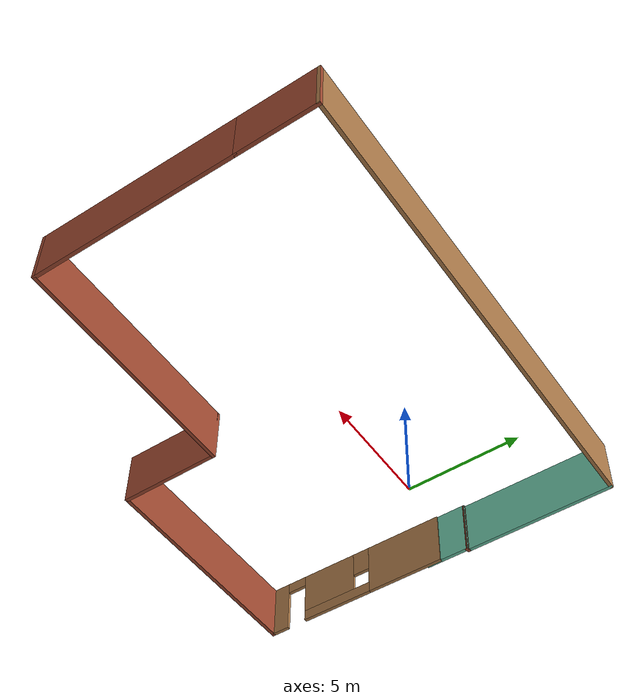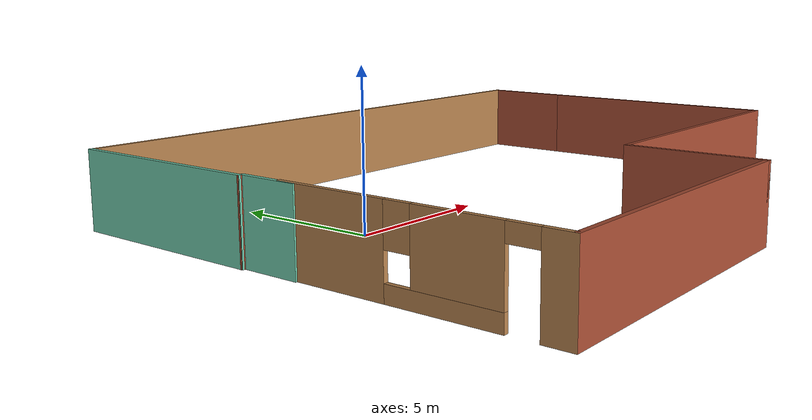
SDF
<?xml version='1.0'?>
<sdf version='1.6'>
  <model name='building2'>
    <pose frame=''>5.87157 -1.505 0 0 -0 0</pose>
    <link name='Wall_0'>
      <pose frame=''>-10.1416 -3.975 0 0 -0 -1.5708</pose>
      <visual name='Wall_0_Visual_0'>
        <pose frame=''>-2.5932 0 1.25 0 -0 0</pose>
        <geometry>
          <box>
            <size>3.5636 0.15 2.5</size>
          </box>
        </geometry>
        <material>
          <script>
            <uri>file://media/materials/scripts/gazebo.material</uri>
            <name>Gazebo/Wood</name>
          </script>
          <ambient>1 1 1 1</ambient>
        </material>
        <meta>
          <layer>0</layer>
        </meta>
      </visual>
      <collision name='Wall_0_Collision_0'>
        <geometry>
          <box>
            <size>3.5636 0.15 2.5</size>
          </box>
        </geometry>
        <pose frame=''>-2.5932 0 1.25 0 -0 0</pose>
      </collision>
      <visual name='Wall_0_Visual_1'>
        <pose frame=''>3.92616 0 1.25 0 -0 0</pose>
        <geometry>
          <box>
            <size>0.897676 0.15 2.5</size>
          </box>
        </geometry>
        <material>
          <script>
            <uri>file://media/materials/scripts/gazebo.material</uri>
            <name>Gazebo/Wood</name>
          </script>
          <ambient>1 1 1 1</ambient>
        </material>
        <meta>
          <layer>0</layer>
        </meta>
      </visual>
      <collision name='Wall_0_Collision_1'>
        <geometry>
          <box>
            <size>0.897676 0.15 2.5</size>
          </box>
        </geometry>
        <pose frame=''>3.92616 0 1.25 0 -0 0</pose>
      </collision>
      <visual name='Wall_0_Visual_2'>
        <pose frame=''>0.882962 0 0.25 0 -0 0</pose>
        <geometry>
          <box>
            <size>3.38872 0.15 0.5</size>
          </box>
        </geometry>
        <material>
          <script>
            <uri>file://media/materials/scripts/gazebo.material</uri>
            <name>Gazebo/Wood</name>
          </script>
          <ambient>1 1 1 1</ambient>
        </material>
        <meta>
          <layer>0</layer>
        </meta>
      </visual>
      <collision name='Wall_0_Collision_2'>
        <geometry>
          <box>
            <size>3.38872 0.15 0.5</size>
          </box>
        </geometry>
        <pose frame=''>0.882962 0 0.25 0 -0 0</pose>
      </collision>
      <visual name='Wall_0_Visual_3'>
        <pose frame=''>1.28296 0 1.5 0 -0 0</pose>
        <geometry>
          <box>
            <size>2.58872 0.15 2</size>
          </box>
        </geometry>
        <material>
          <script>
            <uri>file://media/materials/scripts/gazebo.material</uri>
            <name>Gazebo/Wood</name>
          </script>
          <ambient>1 1 1 1</ambient>
        </material>
        <meta>
          <layer>0</layer>
        </meta>
      </visual>
      <collision name='Wall_0_Collision_3'>
        <geometry>
          <box>
            <size>2.58872 0.15 2</size>
          </box>
        </geometry>
        <pose frame=''>1.28296 0 1.5 0 -0 0</pose>
      </collision>
      <visual name='Wall_0_Visual_4'>
        <pose frame=''>-0.4114 0 1.9 0 -0 0</pose>
        <geometry>
          <box>
            <size>0.8 0.15 1.2</size>
          </box>
        </geometry>
        <material>
          <script>
            <uri>file://media/materials/scripts/gazebo.material</uri>
            <name>Gazebo/Wood</name>
          </script>
          <ambient>1 1 1 1</ambient>
        </material>
        <meta>
          <layer>0</layer>
        </meta>
      </visual>
      <collision name='Wall_0_Collision_4'>
        <geometry>
          <box>
            <size>0.8 0.15 1.2</size>
          </box>
        </geometry>
        <pose frame=''>-0.4114 0 1.9 0 -0 0</pose>
      </collision>
      <visual name='Wall_0_Visual_5'>
        <pose frame=''>3.02732 0 2.25 0 -0 0</pose>
        <geometry>
          <box>
            <size>0.9 0.15 0.5</size>
          </box>
        </geometry>
        <material>
          <script>
            <uri>file://media/materials/scripts/gazebo.material</uri>
            <name>Gazebo/Wood</name>
          </script>
          <ambient>1 1 1 1</ambient>
        </material>
        <meta>
          <layer>0</layer>
        </meta>
      </visual>
      <collision name='Wall_0_Collision_5'>
        <geometry>
          <box>
            <size>0.9 0.15 0.5</size>
          </box>
        </geometry>
        <pose frame=''>3.02732 0 2.25 0 -0 0</pose>
      </collision>
    </link>
    <link name='Wall_10'>
      <collision name='Wall_10_Collision'>
        <geometry>
          <box>
            <size>2 0.15 2.5</size>
          </box>
        </geometry>
        <pose frame=''>0 0 1.25 0 -0 0</pose>
      </collision>
      <visual name='Wall_10_Visual'>
        <pose frame=''>0 0 1.25 0 -0 0</pose>
        <geometry>
          <box>
            <size>2 0.15 2.5</size>
          </box>
        </geometry>
        <material>
          <script>
            <uri>file://media/materials/scripts/gazebo.material</uri>
            <name>Gazebo/Grey</name>
          </script>
          <ambient>0.435294 0.796078 0.67451 1</ambient>
        </material>
        <meta>
          <layer>0</layer>
        </meta>
      </visual>
      <pose frame=''>-10.195 0.724118 0 0 -0 -1.5708</pose>
    </link>
    <link name='Wall_2'>
      <collision name='Wall_2_Collision'>
        <geometry>
          <box>
            <size>10.25 0.15 2.5</size>
          </box>
        </geometry>
        <pose frame=''>0 0 1.25 0 -0 0</pose>
      </collision>
      <visual name='Wall_2_Visual'>
        <pose frame=''>0 0 1.25 0 -0 0</pose>
        <geometry>
          <box>
            <size>10.25 0.15 2.5</size>
          </box>
        </geometry>
        <material>
          <script>
            <uri>file://media/materials/scripts/gazebo.material</uri>
            <name>Gazebo/Bricks</name>
          </script>
          <ambient>1 1 1 1</ambient>
        </material>
        <meta>
          <layer>0</layer>
        </meta>
      </visual>
      <pose frame=''>-5.09157 -8.275 0 0 -0 0</pose>
    </link>
    <link name='Wall_3'>
      <collision name='Wall_3_Collision'>
        <geometry>
          <box>
            <size>4.5 0.15 2.5</size>
          </box>
        </geometry>
        <pose frame=''>0 0 1.25 0 -0 0</pose>
      </collision>
      <visual name='Wall_3_Visual'>
        <pose frame=''>0 0 1.25 0 -0 0</pose>
        <geometry>
          <box>
            <size>4.5 0.15 2.5</size>
          </box>
        </geometry>
        <material>
          <script>
            <uri>file://media/materials/scripts/gazebo.material</uri>
            <name>Gazebo/Bricks</name>
          </script>
          <ambient>1 1 1 1</ambient>
        </material>
        <meta>
          <layer>0</layer>
        </meta>
      </visual>
      <pose frame=''>-0.041573 -6.1 0 0 -0 1.5708</pose>
    </link>
    <link name='Wall_4'>
      <collision name='Wall_4_Collision'>
        <geometry>
          <box>
            <size>10.5 0.15 2.5</size>
          </box>
        </geometry>
        <pose frame=''>0 0 1.25 0 -0 0</pose>
      </collision>
      <visual name='Wall_4_Visual'>
        <pose frame=''>0 0 1.25 0 -0 0</pose>
        <geometry>
          <box>
            <size>10.5 0.15 2.5</size>
          </box>
        </geometry>
        <material>
          <script>
            <uri>file://media/materials/scripts/gazebo.material</uri>
            <name>Gazebo/Bricks</name>
          </script>
          <ambient>1 1 1 1</ambient>
        </material>
        <meta>
          <layer>0</layer>
        </meta>
      </visual>
      <pose frame=''>5.13343 -3.925 0 0 -0 0</pose>
    </link>
    <link name='Wall_5'>
      <collision name='Wall_5_Collision'>
        <geometry>
          <box>
            <size>9 0.15 2.5</size>
          </box>
        </geometry>
        <pose frame=''>0 0 1.25 0 -0 0</pose>
      </collision>
      <visual name='Wall_5_Visual'>
        <pose frame=''>0 0 1.25 0 -0 0</pose>
        <geometry>
          <box>
            <size>9 0.15 2.5</size>
          </box>
        </geometry>
        <material>
          <script>
            <uri>file://media/materials/scripts/gazebo.material</uri>
            <name>Gazebo/Bricks</name>
          </script>
          <ambient>1 1 1 1</ambient>
        </material>
        <meta>
          <layer>0</layer>
        </meta>
      </visual>
      <pose frame=''>10.3084 0.5 0 0 -0 1.5708</pose>
    </link>
    <link name='Wall_6'>
      <collision name='Wall_6_Collision'>
        <geometry>
          <box>
            <size>3.5 0.15 2.5</size>
          </box>
        </geometry>
        <pose frame=''>0 0 1.25 0 -0 0</pose>
      </collision>
      <visual name='Wall_6_Visual'>
        <pose frame=''>0 0 1.25 0 -0 0</pose>
        <geometry>
          <box>
            <size>3.5 0.15 2.5</size>
          </box>
        </geometry>
        <material>
          <script>
            <uri>file://media/materials/scripts/gazebo.material</uri>
            <name>Gazebo/Bricks</name>
          </script>
          <ambient>1 1 1 1</ambient>
        </material>
        <meta>
          <layer>0</layer>
        </meta>
      </visual>
      <pose frame=''>10.3084 6.6 0 0 -0 1.5708</pose>
    </link>
    <link name='Wall_7'>
      <collision name='Wall_7_Collision'>
        <geometry>
          <box>
            <size>20.75 0.15 2.5</size>
          </box>
        </geometry>
        <pose frame=''>0 0 1.25 0 -0 0</pose>
      </collision>
      <visual name='Wall_7_Visual'>
        <pose frame=''>0 0 1.25 0 -0 0</pose>
        <geometry>
          <box>
            <size>20.75 0.15 2.5</size>
          </box>
        </geometry>
        <material>
          <script>
            <uri>file://media/materials/scripts/gazebo.material</uri>
            <name>Gazebo/Wood</name>
          </script>
          <ambient>1 1 1 1</ambient>
        </material>
        <meta>
          <layer>0</layer>
        </meta>
      </visual>
      <pose frame=''>0.008427 8.275 0 0 -0 3.14159</pose>
    </link>
    <link name='Wall_8'>
      <collision name='Wall_8_Collision'>
        <geometry>
          <box>
            <size>6.75 0.15 2.5</size>
          </box>
        </geometry>
        <pose frame=''>0 0 1.25 0 -0 0</pose>
      </collision>
      <visual name='Wall_8_Visual'>
        <pose frame=''>0 0 1.25 0 -0 0</pose>
        <geometry>
          <box>
            <size>6.75 0.15 2.5</size>
          </box>
        </geometry>
        <material>
          <script>
            <uri>file://media/materials/scripts/gazebo.material</uri>
            <name>Gazebo/Grey</name>
          </script>
          <ambient>0.435294 0.796078 0.67451 1</ambient>
        </material>
        <meta>
          <layer>0</layer>
        </meta>
      </visual>
      <pose frame=''>-10.2916 4.975 0 0 -0 -1.5708</pose>
    </link>
    <link name='Wall_9'>
      <collision name='Wall_9_Collision'>
        <geometry>
          <box>
            <size>0.25 0.15 2.5</size>
          </box>
        </geometry>
        <pose frame=''>0 0 1.25 0 -0 0</pose>
      </collision>
      <visual name='Wall_9_Visual'>
        <pose frame=''>0 0 1.25 0 -0 0</pose>
        <geometry>
          <box>
            <size>0.25 0.15 2.5</size>
          </box>
        </geometry>
        <material>
          <script>
            <uri>file://media/materials/scripts/gazebo.material</uri>
            <name>Gazebo/Bricks</name>
          </script>
          <ambient>1 1 1 1</ambient>
        </material>
        <meta>
          <layer>0</layer>
        </meta>
      </visual>
      <pose frame=''>-10.2433 1.66206 0 0 -0 -0.261799</pose>
    </link>
    <static>1</static>
  </model>
</sdf>
